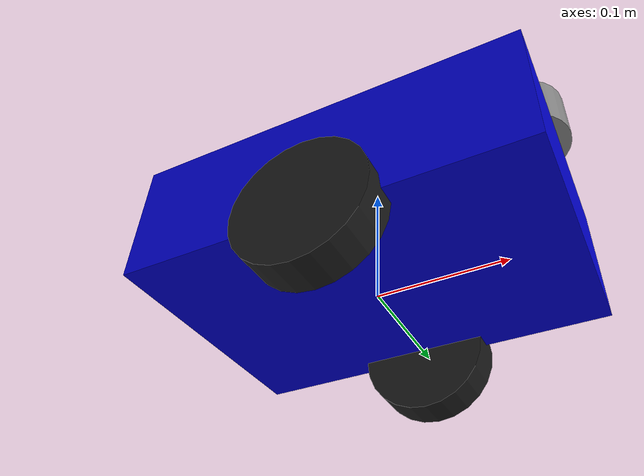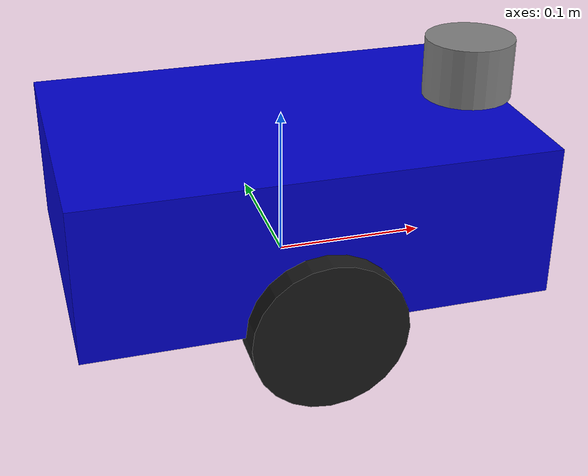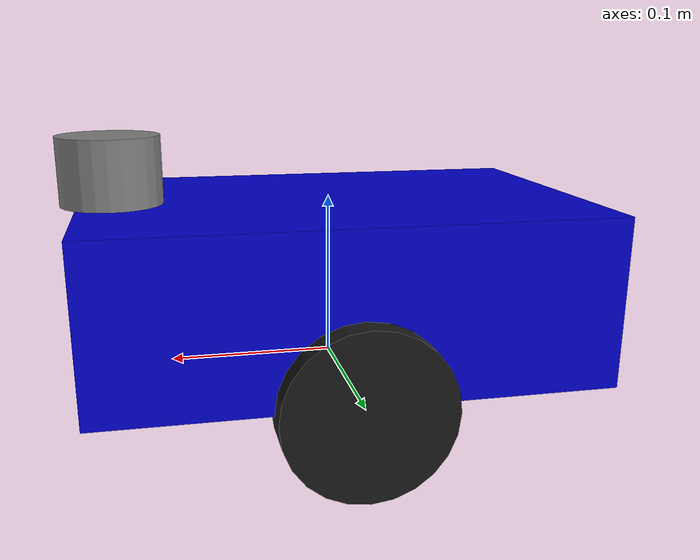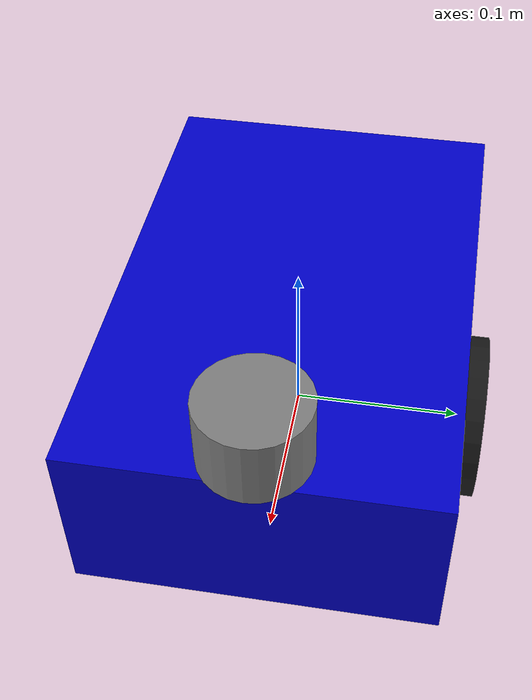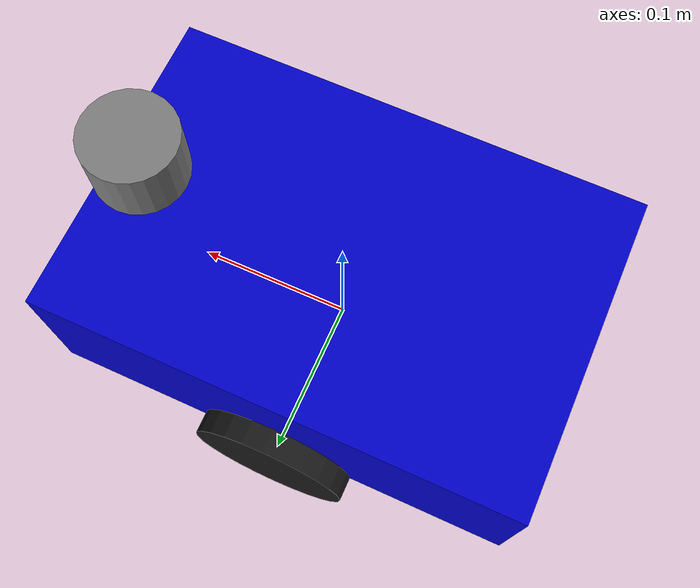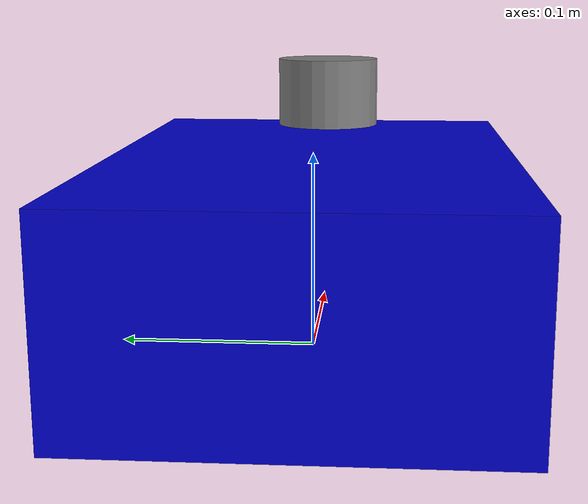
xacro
<?xml version="1.0"?>

<robot name="diff_robot" xmlns:xacro="http://www.ros.org/wiki/xacro">

  <!-- ===================== PARAMETER ===================== -->
  <xacro:property name="body_length" value="0.30"/>
  <xacro:property name="body_width"  value="0.20"/>
  <xacro:property name="body_height" value="0.10"/>

  <xacro:property name="wheel_radius"  value="0.05"/>
  <xacro:property name="wheel_width"   value="0.03"/>
  <xacro:property name="wheel_track"   value="0.20"/>   <!-- jarak antar roda -->

  <xacro:property name="body_mass"  value="2.0"/>
  <xacro:property name="wheel_mass" value="0.3"/>

  <!-- ===================== MATERIAL ===================== -->
  <material name="blue">
    <color rgba="0.0 0.0 0.8 1.0"/>
  </material>
  <material name="gray">
    <color rgba="0.5 0.5 0.5 1.0"/>
  </material>
  <material name="black">
    <color rgba="0.1 0.1 0.1 1.0"/>
  </material>

  <!-- ===================== MACRO RODA ===================== -->
  <xacro:macro name="wheel" params="name side y_reflect">
    <link name="${name}">
      <inertial>
        <mass value="${wheel_mass}"/>
        <origin xyz="0 0 0" rpy="0 0 0"/>
        <inertia
          ixx="${wheel_mass*(3*wheel_radius*wheel_radius + wheel_width*wheel_width)/12}"
          iyy="${wheel_mass*wheel_radius*wheel_radius/2}"
          izz="${wheel_mass*(3*wheel_radius*wheel_radius + wheel_width*wheel_width)/12}"
          ixy="0" ixz="0" iyz="0"/>
      </inertial>
      <visual>
        <origin xyz="0 0 0" rpy="${pi/2} 0 0"/>
        <geometry>
          <cylinder radius="${wheel_radius}" length="${wheel_width}"/>
        </geometry>
        <material name="black"/>
      </visual>
      <collision>
        <origin xyz="0 0 0" rpy="${pi/2} 0 0"/>
        <geometry>
          <cylinder radius="${wheel_radius}" length="${wheel_width}"/>
        </geometry>
      </collision>
    </link>

    <joint name="${name}_joint" type="continuous">
      <parent link="base_link"/>
      <child  link="${name}"/>
      <origin xyz="0 ${y_reflect * wheel_track/2} ${-body_height/2}"
              rpy="0 0 0"/>
      <axis xyz="0 1 0"/>
      <dynamics damping="0.01" friction="0.1"/>
    </joint>

    <!-- Gazebo friction -->
    <gazebo reference="${name}">
      <mu1>1.0</mu1>
      <mu2>1.0</mu2>
      <material>Gazebo/Black</material>
    </gazebo>
  </xacro:macro>

  <!-- ===================== BASE LINK ===================== -->
  <link name="base_footprint"/>

  <joint name="base_footprint_joint" type="fixed">
    <parent link="base_footprint"/>
    <child  link="base_link"/>
    <origin xyz="0 0 ${wheel_radius}" rpy="0 0 0"/>
  </joint>

  <link name="base_link">
    <inertial>
      <mass value="${body_mass}"/>
      <origin xyz="0 0 0" rpy="0 0 0"/>
      <inertia
        ixx="${body_mass*(body_width*body_width + body_height*body_height)/12}"
        iyy="${body_mass*(body_length*body_length + body_height*body_height)/12}"
        izz="${body_mass*(body_length*body_length + body_width*body_width)/12}"
        ixy="0" ixz="0" iyz="0"/>
    </inertial>
    <visual>
      <origin xyz="0 0 0" rpy="0 0 0"/>
      <geometry>
        <box size="${body_length} ${body_width} ${body_height}"/>
      </geometry>
      <material name="blue"/>
    </visual>
    <collision>
      <origin xyz="0 0 0" rpy="0 0 0"/>
      <geometry>
        <box size="${body_length} ${body_width} ${body_height}"/>
      </geometry>
    </collision>
  </link>

  <gazebo reference="base_link">
    <material>Gazebo/Blue</material>
  </gazebo>

  <!-- ===================== RODA ===================== -->
  <xacro:wheel name="left_wheel"  side="left"  y_reflect=" 1"/>
  <xacro:wheel name="right_wheel" side="right" y_reflect="-1"/>

  <!-- ===================== LASER LINK ===================== -->
  <link name="laser_link">
    <inertial>
      <mass value="0.1"/>
      <origin xyz="0 0 0"/>
      <inertia ixx="0.0001" iyy="0.0001" izz="0.0001" ixy="0" ixz="0" iyz="0"/>
    </inertial>
    <visual>
      <origin xyz="0 0 0" rpy="0 0 0"/>
      <geometry>
        <cylinder radius="0.03" length="0.04"/>
      </geometry>
      <material name="gray"/>
    </visual>
    <collision>
      <origin xyz="0 0 0" rpy="0 0 0"/>
      <geometry>
        <cylinder radius="0.03" length="0.04"/>
      </geometry>
    </collision>
  </link>

  <joint name="laser_joint" type="fixed">
    <parent link="base_link"/>
    <child  link="laser_link"/>
    <origin xyz="${body_length/2 - 0.02} 0 ${body_height/2 + 0.02}" rpy="0 0 0"/>
  </joint>

  <!-- ===================== GAZEBO PLUGINS ===================== -->

  <!-- Differential Drive Controller Plugin -->
  <gazebo>
    <plugin name="diff_drive_controller" filename="libgazebo_ros_diff_drive.so">
      <leftJoint>left_wheel_joint</leftJoint>
      <rightJoint>right_wheel_joint</rightJoint>
      <wheelSeparation>${wheel_track}</wheelSeparation>
      <wheelRadius>${wheel_radius}</wheelRadius>
      <commandTopic>/cmd_vel</commandTopic>
      <odometryTopic>/odom</odometryTopic>
      <odometryFrame>odom</odometryFrame>
      <robotBaseFrame>base_footprint</robotBaseFrame>
      <publishWheelTF>true</publishWheelTF>
      <publishWheelJointState>true</publishWheelJointState>
      <legacyMode>false</legacyMode>
      <updateRate>50</updateRate>
    </plugin>
  </gazebo>

  <!-- Laser Scanner Plugin (simulasi RPLidar) -->
  <gazebo reference="laser_link">
    <sensor type="ray" name="lidar_sensor">
      <pose>0 0 0 0 0 0</pose>
      <visualize>false</visualize>
      <update_rate>10</update_rate>
      <ray>
        <scan>
          <horizontal>
            <samples>360</samples>
            <resolution>1</resolution>
            <min_angle>-3.14159</min_angle>
            <max_angle>3.14159</max_angle>
          </horizontal>
        </scan>
        <range>
          <min>0.10</min>
          <max>6.0</max>
          <resolution>0.01</resolution>
        </range>
        <noise>
          <type>gaussian</type>
          <mean>0.0</mean>
          <stddev>0.01</stddev>
        </noise>
      </ray>
      <plugin name="lidar_plugin" filename="libgazebo_ros_laser.so">
        <topicName>/scan</topicName>
        <frameName>laser_link</frameName>
      </plugin>
    </sensor>
  </gazebo>

</robot>
